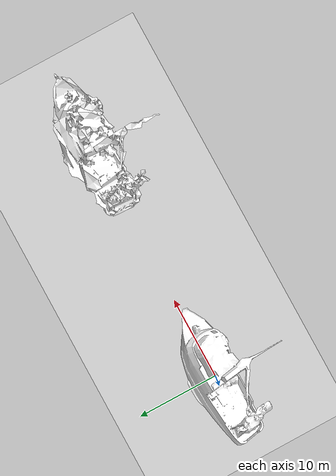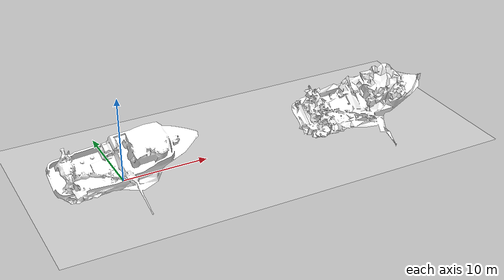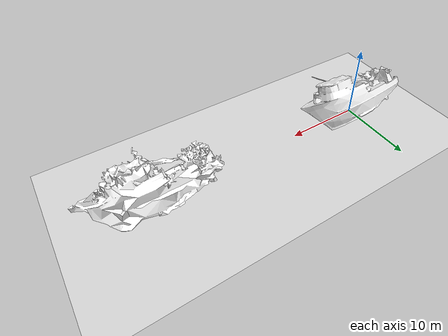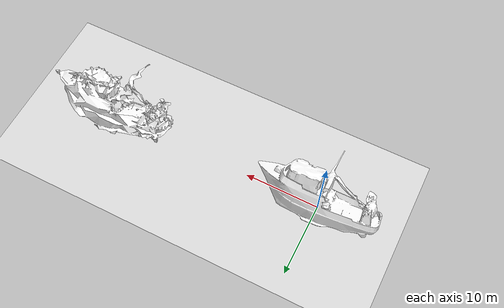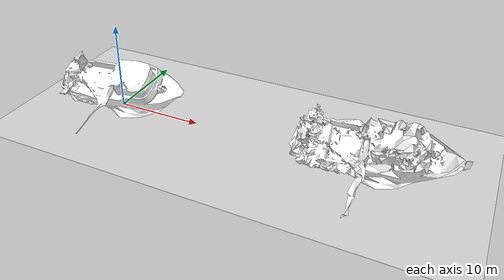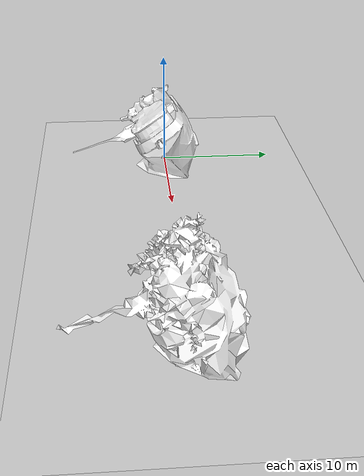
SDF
<?xml version="1.0"?>

<sdf version="1.6">
  <world name="shipwreck">

    <include>
      <uri>model://ground_plane</uri>
    </include>

    <include>
      <uri>model://sun</uri>
    </include>

    <!-- Undistorted model -->
    <include>
      <pose>0 0 0 0 0 0</pose>
      <uri>https://fuel.ignitionrobotics.org/1.0/Cole/models/Sunken Ship</uri>
    </include>

    <!-- Distorted model -->
    <include>
      <pose>30 0 0 0 0 0</pose>
      <uri>model://sunken_ship_distorted</uri>
    </include>

  </world>
</sdf>

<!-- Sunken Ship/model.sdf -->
<sdf version="1.6">
  <model name="sunkenship">
    <static>true</static>
    <link name="base_link">
      <collision name="collision">
        <pose>0 0 0 0 0 0</pose>
        <geometry>
          <mesh>
            <uri>model://SunkenShip/meshes/sunkenship.dae</uri>
            <scale>1.0 1.0 1.0</scale>
          </mesh>
        </geometry>
      </collision>
      <visual name= "SunkenShip_visual">
        <geometry>
          <mesh>
            <uri>model://SunkenShip/meshes/sunkenship.dae</uri>
            <submesh>
              <name>SunkenShip</name>
              <center>false</center>
            </submesh>
          </mesh>
        </geometry>
        <material>
          <diffuse>1.0 1.0 1.0</diffuse>
          <specular>1.0 1.0 1.0</specular>
          <pbr>
            <metal>
              <albedo_map>model://SunkenShip/materials/textures/SunkenShip_Albedo.png</albedo_map>
              <normal_map>model://SunkenShip/materials/textures/SunkenShip_Normal.png</normal_map>
              <metalness_map>model://SunkenShip/materials/textures/SunkenShip_Metalness.png</metalness_map>
              <roughness_map>model://SunkenShip/materials/textures/SunkenShip_Roughness.png</roughness_map>
            </metal>
          </pbr>
          <!-- fallback to script if no PBR support-->
          <script>
            <uri>model://SunkenShip/materials/scripts/</uri>
            <uri>model://SunkenShip/materials/textures/</uri>
            <name>UrbanTile/SunkenShip</name>
          </script>
        </material>
      </visual>
    </link>
  </model>
</sdf>

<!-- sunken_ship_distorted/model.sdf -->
<sdf version="1.6">
    <model name="sunkenship_distorted">
        <static>true</static>
        <link name="base_link">
            <collision name="collision">
                <pose>0 0 0 0 0 0</pose>
                <geometry>
                    <mesh>
                        <uri>model://sunken_ship/meshes/sunkenship_distort.dae</uri>
                        <scale>1.0 1.0 1.0</scale>
                    </mesh>
                </geometry>
            </collision>
            <visual name="SunkenShip_distorted_visual">
                <geometry>
                    <mesh>
                        <uri>model://sunken_ship/meshes/sunkenship_distort.dae</uri>
                        <submesh>
                            <name>SunkenShip</name>
                            <center>false</center>
                        </submesh>
                    </mesh>
                </geometry>
                <material>
                    <diffuse>1.0 1.0 1.0</diffuse>
                    <specular>1.0 1.0 1.0</specular>
                    <pbr>
                        <metal>
                            <albedo_map>https://fuel.ignitionrobotics.org/1.0/cole/models/sunken ship/2/files/materials/textures/SunkenShip_Albedo.png</albedo_map>
                            <normal_map>https://fuel.ignitionrobotics.org/1.0/cole/models/sunken ship/2/files/materials/textures/SunkenShip_Normal.png</normal_map>
                            <metalness_map>https://fuel.ignitionrobotics.org/1.0/cole/models/sunken ship/2/files/materials/textures/SunkenShip_Metalness.png</metalness_map>
                            <roughness_map>https://fuel.ignitionrobotics.org/1.0/cole/models/sunken ship/2/files/materials/textures/SunkenShip_Roughness.png</roughness_map>
                        </metal>
                    </pbr>
                    <!-- fallback to script if no PBR support-->
                    <script>
                        <uri>https://fuel.ignitionrobotics.org/1.0/cole/models/sunken ship/2/files/materials/scripts/</uri>
                        <uri>https://fuel.ignitionrobotics.org/1.0/cole/models/sunken ship/2/files/materials/textures/</uri>
                        <name>UrbanTile/SunkenShip</name>
                    </script>
                </material>
            </visual>
        </link>
    </model>
</sdf>
